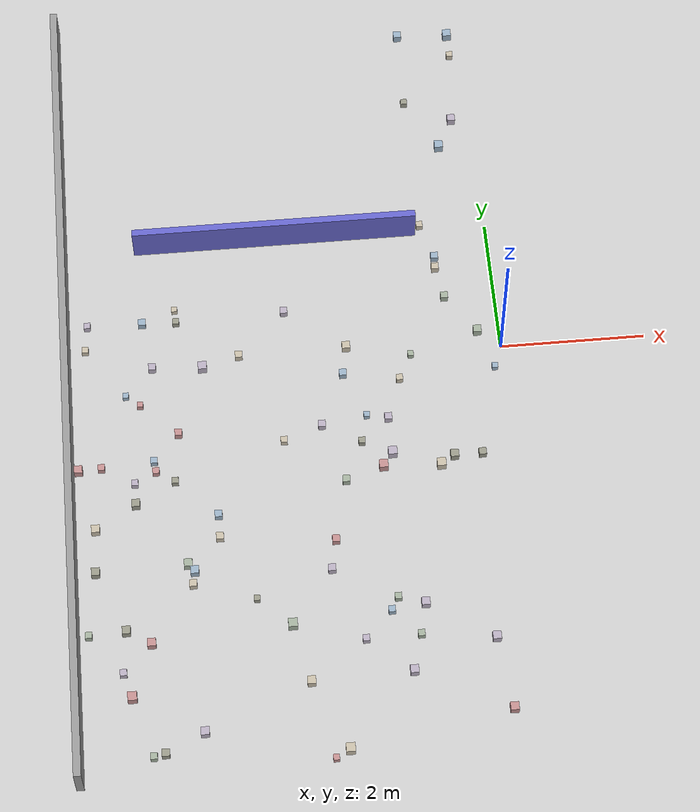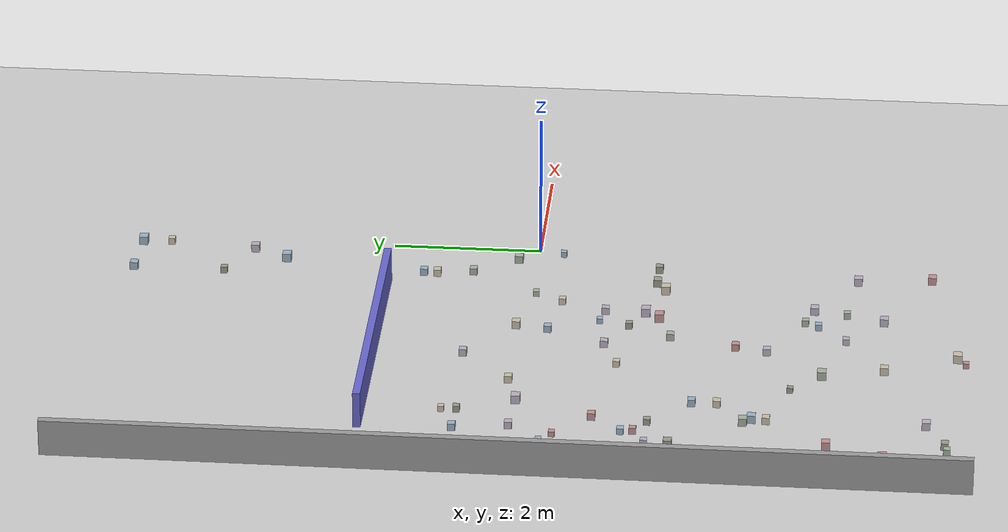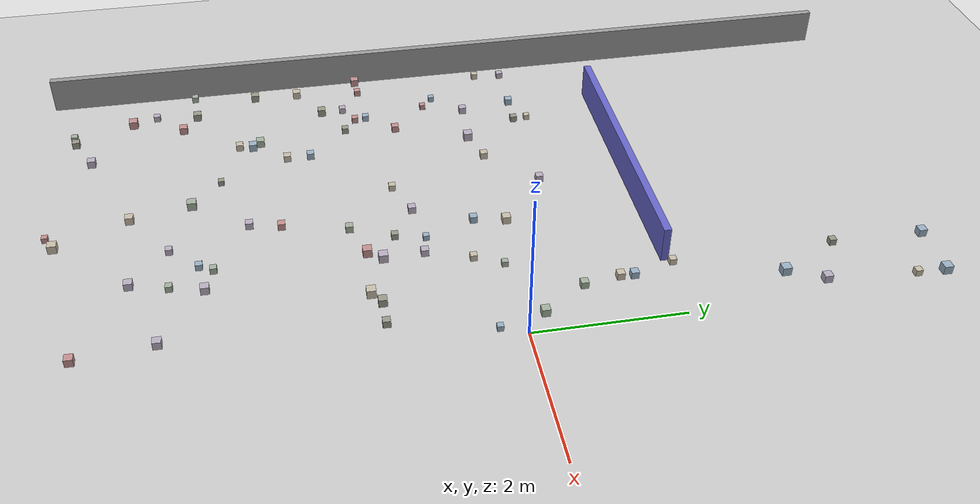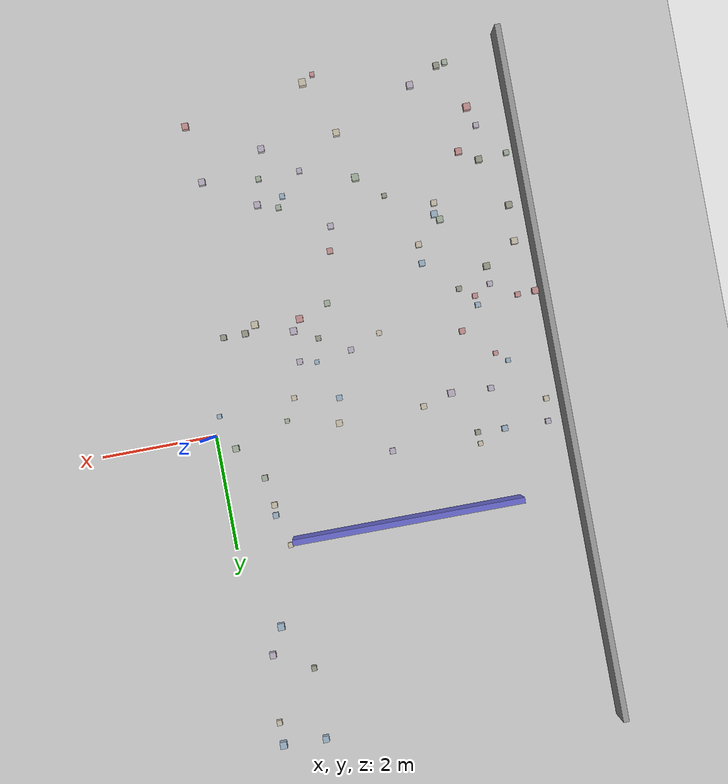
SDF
<sdf version="1.6">
 <world name="small_maze_world">
  <include><uri>model://ground_plane</uri></include>
  <include><uri>model://sun</uri></include>
  <model name="wall_west">
   <static>true</static>
   <pose>-6 0 0.25 0 0 0</pose>
   <link name="link">
    <collision name="collision"><geometry><box><size>0.1 12 0.5</size></box></geometry></collision>
    <visual name="visual">
     <geometry><box><size>0.1 12 0.5</size></box></geometry>
     <material><ambient>0.6 0.6 0.6 1</ambient></material>
    </visual>
   </link>
  </model>
  <model name="maze_wall_1">
   <static>true</static>
   <pose>-3 2 0.25 0 0 0</pose>
   <link name="link">
    <collision name="collision"><geometry><box><size>4 0.1 0.5</size></box></geometry></collision>
    <visual name="visual">
     <geometry><box><size>4 0.1 0.5</size></box></geometry>
     <material><ambient>0.4 0.4 0.8 1</ambient></material>
    </visual>
   </link>
  </model>
  <model name="box_1">
   <static>false</static>
   <pose>-3.18 -3.97 0.05 0 0 0</pose>
   <link name="link">
    <inertial>
     <mass>0.2</mass>
     <inertia><ixx>0.001</ixx><iyy>0.001</iyy><izz>0.001</izz><ixy>0</ixy><ixz>0</ixz><iyz>0</iyz></inertia>
    </inertial>
    <collision name="collision"><geometry><box><size>0.12 0.12 0.12</size></box></geometry></collision>
    <visual name="visual">
     <geometry><box><size>0.12 0.12 0.12</size></box></geometry>
     <material><ambient>0.64 0.69 0.62 1</ambient><diffuse>0.64 0.69 0.62 1</diffuse></material>
    </visual>
   </link>
  </model>
  <model name="box_2">
   <static>false</static>
   <pose>-0.93 2.08 0.05 0 0 0</pose>
   <link name="link">
    <inertial>
     <mass>0.2</mass>
     <inertia><ixx>0.001</ixx><iyy>0.001</iyy><izz>0.001</izz><ixy>0</ixy><ixz>0</ixz><iyz>0</iyz></inertia>
    </inertial>
    <collision name="collision"><geometry><box><size>0.09 0.09 0.09</size></box></geometry></collision>
    <visual name="visual">
     <geometry><box><size>0.09 0.09 0.09</size></box></geometry>
     <material><ambient>0.78 0.74 0.66 1</ambient><diffuse>0.78 0.74 0.66 1</diffuse></material>
    </visual>
   </link>
  </model>
  <model name="box_3">
   <static>false</static>
   <pose>-0.45 -5.37 0.05 0 0 0</pose>
   <link name="link">
    <inertial>
     <mass>0.2</mass>
     <inertia><ixx>0.001</ixx><iyy>0.001</iyy><izz>0.001</izz><ixy>0</ixy><ixz>0</ixz><iyz>0</iyz></inertia>
    </inertial>
    <collision name="collision"><geometry><box><size>0.11 0.11 0.11</size></box></geometry></collision>
    <visual name="visual">
     <geometry><box><size>0.11 0.11 0.11</size></box></geometry>
     <material><ambient>0.76 0.56 0.56 1</ambient><diffuse>0.76 0.56 0.56 1</diffuse></material>
    </visual>
   </link>
  </model>
  <model name="box_4">
   <static>false</static>
   <pose>-4.91 -5.62 0.05 0 0 0</pose>
   <link name="link">
    <inertial>
     <mass>0.2</mass>
     <inertia><ixx>0.001</ixx><iyy>0.001</iyy><izz>0.001</izz><ixy>0</ixy><ixz>0</ixz><iyz>0</iyz></inertia>
    </inertial>
    <collision name="collision"><geometry><box><size>0.1 0.1 0.1</size></box></geometry></collision>
    <visual name="visual">
     <geometry><box><size>0.1 0.1 0.1</size></box></geometry>
     <material><ambient>0.6 0.6 0.54 1</ambient><diffuse>0.6 0.6 0.54 1</diffuse></material>
    </visual>
   </link>
  </model>
  <model name="box_5">
   <static>false</static>
   <pose>-2.25 -4.26 0.05 0 0 0</pose>
   <link name="link">
    <inertial>
     <mass>0.2</mass>
     <inertia><ixx>0.001</ixx><iyy>0.001</iyy><izz>0.001</izz><ixy>0</ixy><ixz>0</ixz><iyz>0</iyz></inertia>
    </inertial>
    <collision name="collision"><geometry><box><size>0.09 0.09 0.09</size></box></geometry></collision>
    <visual name="visual">
     <geometry><box><size>0.09 0.09 0.09</size></box></geometry>
     <material><ambient>0.72 0.68 0.75 1</ambient><diffuse>0.72 0.68 0.75 1</diffuse></material>
    </visual>
   </link>
  </model>
  <model name="box_7">
   <static>false</static>
   <pose>-2.61 -3.22 0.05 0 0 0</pose>
   <link name="link">
    <inertial>
     <mass>0.2</mass>
     <inertia><ixx>0.001</ixx><iyy>0.001</iyy><izz>0.001</izz><ixy>0</ixy><ixz>0</ixz><iyz>0</iyz></inertia>
    </inertial>
    <collision name="collision"><geometry><box><size>0.1 0.1 0.1</size></box></geometry></collision>
    <visual name="visual">
     <geometry><box><size>0.1 0.1 0.1</size></box></geometry>
     <material><ambient>0.72 0.68 0.75 1</ambient><diffuse>0.72 0.68 0.75 1</diffuse></material>
    </visual>
   </link>
  </model>
  <model name="box_9">
   <static>false</static>
   <pose>-4.87 -1.42 0.05 0 0 0</pose>
   <link name="link">
    <inertial>
     <mass>0.2</mass>
     <inertia><ixx>0.001</ixx><iyy>0.001</iyy><izz>0.001</izz><ixy>0</ixy><ixz>0</ixz><iyz>0</iyz></inertia>
    </inertial>
    <collision name="collision"><geometry><box><size>0.09 0.09 0.09</size></box></geometry></collision>
    <visual name="visual">
     <geometry><box><size>0.09 0.09 0.09</size></box></geometry>
     <material><ambient>0.6 0.69 0.77 1</ambient><diffuse>0.6 0.69 0.77 1</diffuse></material>
    </visual>
   </link>
  </model>
  <model name="box_10">
   <static>false</static>
   <pose>-0.94 4.25 0.05 0 0 0</pose>
   <link name="link">
    <inertial>
     <mass>0.2</mass>
     <inertia><ixx>0.001</ixx><iyy>0.001</iyy><izz>0.001</izz><ixy>0</ixy><ixz>0</ixz><iyz>0</iyz></inertia>
    </inertial>
    <collision name="collision"><geometry><box><size>0.09 0.09 0.09</size></box></geometry></collision>
    <visual name="visual">
     <geometry><box><size>0.09 0.09 0.09</size></box></geometry>
     <material><ambient>0.6 0.6 0.54 1</ambient><diffuse>0.6 0.6 0.54 1</diffuse></material>
    </visual>
   </link>
  </model>
  <model name="box_15">
   <static>false</static>
   <pose>-0.77 1.53 0.05 0 0 0</pose>
   <link name="link">
    <inertial>
     <mass>0.2</mass>
     <inertia><ixx>0.001</ixx><iyy>0.001</iyy><izz>0.001</izz><ixy>0</ixy><ixz>0</ixz><iyz>0</iyz></inertia>
    </inertial>
    <collision name="collision"><geometry><box><size>0.1 0.1 0.1</size></box></geometry></collision>
    <visual name="visual">
     <geometry><box><size>0.1 0.1 0.1</size></box></geometry>
     <material><ambient>0.6 0.69 0.77 1</ambient><diffuse>0.6 0.69 0.77 1</diffuse></material>
    </visual>
   </link>
  </model>
  <model name="box_17">
   <static>false</static>
   <pose>-1.95 -0.95 0.05 0 0 0</pose>
   <link name="link">
    <inertial>
     <mass>0.2</mass>
     <inertia><ixx>0.001</ixx><iyy>0.001</iyy><izz>0.001</izz><ixy>0</ixy><ixz>0</ixz><iyz>0</iyz></inertia>
    </inertial>
    <collision name="collision"><geometry><box><size>0.08 0.08 0.08</size></box></geometry></collision>
    <visual name="visual">
     <geometry><box><size>0.08 0.08 0.08</size></box></geometry>
     <material><ambient>0.6 0.69 0.77 1</ambient><diffuse>0.6 0.69 0.77 1</diffuse></material>
    </visual>
   </link>
  </model>
  <model name="box_18">
   <static>false</static>
   <pose>-5.14 -2.05 0.05 0 0 0</pose>
   <link name="link">
    <inertial>
     <mass>0.2</mass>
     <inertia><ixx>0.001</ixx><iyy>0.001</iyy><izz>0.001</izz><ixy>0</ixy><ixz>0</ixz><iyz>0</iyz></inertia>
    </inertial>
    <collision name="collision"><geometry><box><size>0.11 0.11 0.11</size></box></geometry></collision>
    <visual name="visual">
     <geometry><box><size>0.11 0.11 0.11</size></box></geometry>
     <material><ambient>0.6 0.6 0.54 1</ambient><diffuse>0.6 0.6 0.54 1</diffuse></material>
    </visual>
   </link>
  </model>
  <model name="box_19">
   <static>false</static>
   <pose>-2.14 0.16 0.05 0 0 0</pose>
   <link name="link">
    <inertial>
     <mass>0.2</mass>
     <inertia><ixx>0.001</ixx><iyy>0.001</iyy><izz>0.001</izz><ixy>0</ixy><ixz>0</ixz><iyz>0</iyz></inertia>
    </inertial>
    <collision name="collision"><geometry><box><size>0.11 0.11 0.11</size></box></geometry></collision>
    <visual name="visual">
     <geometry><box><size>0.11 0.11 0.11</size></box></geometry>
     <material><ambient>0.78 0.74 0.66 1</ambient><diffuse>0.78 0.74 0.66 1</diffuse></material>
    </visual>
   </link>
  </model>
  <model name="box_22">
   <static>false</static>
   <pose>-3.63 0.14 0.05 0 0 0</pose>
   <link name="link">
    <inertial>
     <mass>0.2</mass>
     <inertia><ixx>0.001</ixx><iyy>0.001</iyy><izz>0.001</izz><ixy>0</ixy><ixz>0</ixz><iyz>0</iyz></inertia>
    </inertial>
    <collision name="collision"><geometry><box><size>0.1 0.1 0.1</size></box></geometry></collision>
    <visual name="visual">
     <geometry><box><size>0.1 0.1 0.1</size></box></geometry>
     <material><ambient>0.78 0.74 0.66 1</ambient><diffuse>0.78 0.74 0.66 1</diffuse></material>
    </visual>
   </link>
  </model>
  <model name="box_25">
   <static>false</static>
   <pose>-5.83 -3.92 0.05 0 0 0</pose>
   <link name="link">
    <inertial>
     <mass>0.2</mass>
     <inertia><ixx>0.001</ixx><iyy>0.001</iyy><izz>0.001</izz><ixy>0</ixy><ixz>0</ixz><iyz>0</iyz></inertia>
    </inertial>
    <collision name="collision"><geometry><box><size>0.09 0.09 0.09</size></box></geometry></collision>
    <visual name="visual">
     <geometry><box><size>0.09 0.09 0.09</size></box></geometry>
     <material><ambient>0.64 0.69 0.62 1</ambient><diffuse>0.64 0.69 0.62 1</diffuse></material>
    </visual>
   </link>
  </model>
  <model name="box_30">
   <static>false</static>
   <pose>-2.57 -1.05 0.05 0 0 0</pose>
   <link name="link">
    <inertial>
     <mass>0.2</mass>
     <inertia><ixx>0.001</ixx><iyy>0.001</iyy><izz>0.001</izz><ixy>0</ixy><ixz>0</ixz><iyz>0</iyz></inertia>
    </inertial>
    <collision name="collision"><geometry><box><size>0.1 0.1 0.1</size></box></geometry></collision>
    <visual name="visual">
     <geometry><box><size>0.1 0.1 0.1</size></box></geometry>
     <material><ambient>0.72 0.68 0.75 1</ambient><diffuse>0.72 0.68 0.75 1</diffuse></material>
    </visual>
   </link>
  </model>
  <model name="box_32">
   <static>false</static>
   <pose>-3.1 -1.25 0.05 0 0 0</pose>
   <link name="link">
    <inertial>
     <mass>0.2</mass>
     <inertia><ixx>0.001</ixx><iyy>0.001</iyy><izz>0.001</izz><ixy>0</ixy><ixz>0</ixz><iyz>0</iyz></inertia>
    </inertial>
    <collision name="collision"><geometry><box><size>0.09 0.09 0.09</size></box></geometry></collision>
    <visual name="visual">
     <geometry><box><size>0.09 0.09 0.09</size></box></geometry>
     <material><ambient>0.78 0.74 0.66 1</ambient><diffuse>0.78 0.74 0.66 1</diffuse></material>
    </visual>
   </link>
  </model>
  <model name="box_36">
   <static>false</static>
   <pose>-2.77 -5.86 0.05 0 0 0</pose>
   <link name="link">
    <inertial>
     <mass>0.2</mass>
     <inertia><ixx>0.001</ixx><iyy>0.001</iyy><izz>0.001</izz><ixy>0</ixy><ixz>0</ixz><iyz>0</iyz></inertia>
    </inertial>
    <collision name="collision"><geometry><box><size>0.08 0.08 0.08</size></box></geometry></collision>
    <visual name="visual">
     <geometry><box><size>0.08 0.08 0.08</size></box></geometry>
     <material><ambient>0.76 0.56 0.56 1</ambient><diffuse>0.76 0.56 0.56 1</diffuse></material>
    </visual>
   </link>
  </model>
  <model name="box_37">
   <static>false</static>
   <pose>-4.05 -2.3 0.05 0 0 0</pose>
   <link name="link">
    <inertial>
     <mass>0.2</mass>
     <inertia><ixx>0.001</ixx><iyy>0.001</iyy><izz>0.001</izz><ixy>0</ixy><ixz>0</ixz><iyz>0</iyz></inertia>
    </inertial>
    <collision name="collision"><geometry><box><size>0.1 0.1 0.1</size></box></geometry></collision>
    <visual name="visual">
     <geometry><box><size>0.1 0.1 0.1</size></box></geometry>
     <material><ambient>0.6 0.69 0.77 1</ambient><diffuse>0.6 0.69 0.77 1</diffuse></material>
    </visual>
   </link>
  </model>
  <model name="box_41">
   <static>false</static>
   <pose>-1.78 -3.7 0.05 0 0 0</pose>
   <link name="link">
    <inertial>
     <mass>0.2</mass>
     <inertia><ixx>0.001</ixx><iyy>0.001</iyy><izz>0.001</izz><ixy>0</ixy><ixz>0</ixz><iyz>0</iyz></inertia>
    </inertial>
    <collision name="collision"><geometry><box><size>0.09 0.09 0.09</size></box></geometry></collision>
    <visual name="visual">
     <geometry><box><size>0.09 0.09 0.09</size></box></geometry>
     <material><ambient>0.64 0.69 0.62 1</ambient><diffuse>0.64 0.69 0.62 1</diffuse></material>
    </visual>
   </link>
  </model>
  <model name="box_42">
   <static>false</static>
   <pose>-4.94 0.77 0.05 0 0 0</pose>
   <link name="link">
    <inertial>
     <mass>0.2</mass>
     <inertia><ixx>0.001</ixx><iyy>0.001</iyy><izz>0.001</izz><ixy>0</ixy><ixz>0</ixz><iyz>0</iyz></inertia>
    </inertial>
    <collision name="collision"><geometry><box><size>0.1 0.1 0.1</size></box></geometry></collision>
    <visual name="visual">
     <geometry><box><size>0.1 0.1 0.1</size></box></geometry>
     <material><ambient>0.6 0.69 0.77 1</ambient><diffuse>0.6 0.69 0.77 1</diffuse></material>
    </visual>
   </link>
  </model>
  <model name="box_43">
   <static>false</static>
   <pose>-0.3 0.27 0.05 0 0 0</pose>
   <link name="link">
    <inertial>
     <mass>0.2</mass>
     <inertia><ixx>0.001</ixx><iyy>0.001</iyy><izz>0.001</izz><ixy>0</ixy><ixz>0</ixz><iyz>0</iyz></inertia>
    </inertial>
    <collision name="collision"><geometry><box><size>0.11 0.11 0.11</size></box></geometry></collision>
    <visual name="visual">
     <geometry><box><size>0.11 0.11 0.11</size></box></geometry>
     <material><ambient>0.64 0.69 0.62 1</ambient><diffuse>0.64 0.69 0.62 1</diffuse></material>
    </visual>
   </link>
  </model>
  <model name="box_46">
   <static>false</static>
   <pose>-0.12 -0.33 0.05 0 0 0</pose>
   <link name="link">
    <inertial>
     <mass>0.2</mass>
     <inertia><ixx>0.001</ixx><iyy>0.001</iyy><izz>0.001</izz><ixy>0</ixy><ixz>0</ixz><iyz>0</iyz></inertia>
    </inertial>
    <collision name="collision"><geometry><box><size>0.08 0.08 0.08</size></box></geometry></collision>
    <visual name="visual">
     <geometry><box><size>0.08 0.08 0.08</size></box></geometry>
     <material><ambient>0.6 0.69 0.77 1</ambient><diffuse>0.6 0.69 0.77 1</diffuse></material>
    </visual>
   </link>
  </model>
  <model name="box_47">
   <static>false</static>
   <pose>-2.96 0.8 0.05 0 0 0</pose>
   <link name="link">
    <inertial>
     <mass>0.2</mass>
     <inertia><ixx>0.001</ixx><iyy>0.001</iyy><izz>0.001</izz><ixy>0</ixy><ixz>0</ixz><iyz>0</iyz></inertia>
    </inertial>
    <collision name="collision"><geometry><box><size>0.1 0.1 0.1</size></box></geometry></collision>
    <visual name="visual">
     <geometry><box><size>0.1 0.1 0.1</size></box></geometry>
     <material><ambient>0.72 0.68 0.75 1</ambient><diffuse>0.72 0.68 0.75 1</diffuse></material>
    </visual>
   </link>
  </model>
  <model name="box_48">
   <static>false</static>
   <pose>-4.6 -1.75 0.05 0 0 0</pose>
   <link name="link">
    <inertial>
     <mass>0.2</mass>
     <inertia><ixx>0.001</ixx><iyy>0.001</iyy><izz>0.001</izz><ixy>0</ixy><ixz>0</ixz><iyz>0</iyz></inertia>
    </inertial>
    <collision name="collision"><geometry><box><size>0.09 0.09 0.09</size></box></geometry></collision>
    <visual name="visual">
     <geometry><box><size>0.09 0.09 0.09</size></box></geometry>
     <material><ambient>0.6 0.6 0.54 1</ambient><diffuse>0.6 0.6 0.54 1</diffuse></material>
    </visual>
   </link>
  </model>
  <model name="box_50">
   <static>false</static>
   <pose>-1.43 -3.81 0.05 0 0 0</pose>
   <link name="link">
    <inertial>
     <mass>0.2</mass>
     <inertia><ixx>0.001</ixx><iyy>0.001</iyy><izz>0.001</izz><ixy>0</ixy><ixz>0</ixz><iyz>0</iyz></inertia>
    </inertial>
    <collision name="collision"><geometry><box><size>0.11 0.11 0.11</size></box></geometry></collision>
    <visual name="visual">
     <geometry><box><size>0.11 0.11 0.11</size></box></geometry>
     <material><ambient>0.72 0.68 0.75 1</ambient><diffuse>0.72 0.68 0.75 1</diffuse></material>
    </visual>
   </link>
  </model>
  <model name="box_52">
   <static>false</static>
   <pose>-4.85 -1.58 0.05 0 0 0</pose>
   <link name="link">
    <inertial>
     <mass>0.2</mass>
     <inertia><ixx>0.001</ixx><iyy>0.001</iyy><izz>0.001</izz><ixy>0</ixy><ixz>0</ixz><iyz>0</iyz></inertia>
    </inertial>
    <collision name="collision"><geometry><box><size>0.09 0.09 0.09</size></box></geometry></collision>
    <visual name="visual">
     <geometry><box><size>0.09 0.09 0.09</size></box></geometry>
     <material><ambient>0.76 0.56 0.56 1</ambient><diffuse>0.76 0.56 0.56 1</diffuse></material>
    </visual>
   </link>
  </model>
  <model name="box_56">
   <static>false</static>
   <pose>-5.3 -4.82 0.05 0 0 0</pose>
   <link name="link">
    <inertial>
     <mass>0.2</mass>
     <inertia><ixx>0.001</ixx><iyy>0.001</iyy><izz>0.001</izz><ixy>0</ixy><ixz>0</ixz><iyz>0</iyz></inertia>
    </inertial>
    <collision name="collision"><geometry><box><size>0.12 0.12 0.12</size></box></geometry></collision>
    <visual name="visual">
     <geometry><box><size>0.12 0.12 0.12</size></box></geometry>
     <material><ambient>0.76 0.56 0.56 1</ambient><diffuse>0.76 0.56 0.56 1</diffuse></material>
    </visual>
   </link>
  </model>
  <model name="box_57">
   <static>false</static>
   <pose>-1.88 -3.88 0.05 0 0 0</pose>
   <link name="link">
    <inertial>
     <mass>0.2</mass>
     <inertia><ixx>0.001</ixx><iyy>0.001</iyy><izz>0.001</izz><ixy>0</ixy><ixz>0</ixz><iyz>0</iyz></inertia>
    </inertial>
    <collision name="collision"><geometry><box><size>0.09 0.09 0.09</size></box></geometry></collision>
    <visual name="visual">
     <geometry><box><size>0.09 0.09 0.09</size></box></geometry>
     <material><ambient>0.6 0.69 0.77 1</ambient><diffuse>0.6 0.69 0.77 1</diffuse></material>
    </visual>
   </link>
  </model>
  <model name="box_58">
   <static>false</static>
   <pose>-0.51 3.44 0.05 0 0 0</pose>
   <link name="link">
    <inertial>
     <mass>0.2</mass>
     <inertia><ixx>0.001</ixx><iyy>0.001</iyy><izz>0.001</izz><ixy>0</ixy><ixz>0</ixz><iyz>0</iyz></inertia>
    </inertial>
    <collision name="collision"><geometry><box><size>0.12 0.12 0.12</size></box></geometry></collision>
    <visual name="visual">
     <geometry><box><size>0.12 0.12 0.12</size></box></geometry>
     <material><ambient>0.6 0.69 0.77 1</ambient><diffuse>0.6 0.69 0.77 1</diffuse></material>
    </visual>
   </link>
  </model>
  <model name="box_61">
   <static>false</static>
   <pose>-3.62 -3.57 0.05 0 0 0</pose>
   <link name="link">
    <inertial>
     <mass>0.2</mass>
     <inertia><ixx>0.001</ixx><iyy>0.001</iyy><izz>0.001</izz><ixy>0</ixy><ixz>0</ixz><iyz>0</iyz></inertia>
    </inertial>
    <collision name="collision"><geometry><box><size>0.08 0.08 0.08</size></box></geometry></collision>
    <visual name="visual">
     <geometry><box><size>0.08 0.08 0.08</size></box></geometry>
     <material><ambient>0.6 0.6 0.54 1</ambient><diffuse>0.6 0.6 0.54 1</diffuse></material>
    </visual>
   </link>
  </model>
  <model name="box_65">
   <static>false</static>
   <pose>-5.02 -0.54 0.05 0 0 0</pose>
   <link name="link">
    <inertial>
     <mass>0.2</mass>
     <inertia><ixx>0.001</ixx><iyy>0.001</iyy><izz>0.001</izz><ixy>0</ixy><ixz>0</ixz><iyz>0</iyz></inertia>
    </inertial>
    <collision name="collision"><geometry><box><size>0.08 0.08 0.08</size></box></geometry></collision>
    <visual name="visual">
     <geometry><box><size>0.08 0.08 0.08</size></box></geometry>
     <material><ambient>0.76 0.56 0.56 1</ambient><diffuse>0.76 0.56 0.56 1</diffuse></material>
    </visual>
   </link>
  </model>
  <model name="box_66">
   <static>false</static>
   <pose>-4.49 -2.99 0.05 0 0 0</pose>
   <link name="link">
    <inertial>
     <mass>0.2</mass>
     <inertia><ixx>0.001</ixx><iyy>0.001</iyy><izz>0.001</izz><ixy>0</ixy><ixz>0</ixz><iyz>0</iyz></inertia>
    </inertial>
    <collision name="collision"><geometry><box><size>0.11 0.11 0.11</size></box></geometry></collision>
    <visual name="visual">
     <geometry><box><size>0.11 0.11 0.11</size></box></geometry>
     <material><ambient>0.64 0.69 0.62 1</ambient><diffuse>0.64 0.69 0.62 1</diffuse></material>
    </visual>
   </link>
  </model>
  <model name="box_67">
   <static>false</static>
   <pose>-0.56 -4.37 0.05 0 0 0</pose>
   <link name="link">
    <inertial>
     <mass>0.2</mass>
     <inertia><ixx>0.001</ixx><iyy>0.001</iyy><izz>0.001</izz><ixy>0</ixy><ixz>0</ixz><iyz>0</iyz></inertia>
    </inertial>
    <collision name="collision"><geometry><box><size>0.11 0.11 0.11</size></box></geometry></collision>
    <visual name="visual">
     <geometry><box><size>0.11 0.11 0.11</size></box></geometry>
     <material><ambient>0.72 0.68 0.75 1</ambient><diffuse>0.72 0.68 0.75 1</diffuse></material>
    </visual>
   </link>
  </model>
  <model name="box_69">
   <static>false</static>
   <pose>-4.83 0.04 0.05 0 0 0</pose>
   <link name="link">
    <inertial>
     <mass>0.2</mass>
     <inertia><ixx>0.001</ixx><iyy>0.001</iyy><izz>0.001</izz><ixy>0</ixy><ixz>0</ixz><iyz>0</iyz></inertia>
    </inertial>
    <collision name="collision"><geometry><box><size>0.1 0.1 0.1</size></box></geometry></collision>
    <visual name="visual">
     <geometry><box><size>0.1 0.1 0.1</size></box></geometry>
     <material><ambient>0.72 0.68 0.75 1</ambient><diffuse>0.72 0.68 0.75 1</diffuse></material>
    </visual>
   </link>
  </model>
  <model name="box_71">
   <static>false</static>
   <pose>-1.67 -4.75 0.05 0 0 0</pose>
   <link name="link">
    <inertial>
     <mass>0.2</mass>
     <inertia><ixx>0.001</ixx><iyy>0.001</iyy><izz>0.001</izz><ixy>0</ixy><ixz>0</ixz><iyz>0</iyz></inertia>
    </inertial>
    <collision name="collision"><geometry><box><size>0.11 0.11 0.11</size></box></geometry></collision>
    <visual name="visual">
     <geometry><box><size>0.11 0.11 0.11</size></box></geometry>
     <material><ambient>0.72 0.68 0.75 1</ambient><diffuse>0.72 0.68 0.75 1</diffuse></material>
    </visual>
   </link>
  </model>
  <model name="box_74">
   <static>false</static>
   <pose>-5.71 -3.02 0.05 0 0 0</pose>
   <link name="link">
    <inertial>
     <mass>0.2</mass>
     <inertia><ixx>0.001</ixx><iyy>0.001</iyy><izz>0.001</izz><ixy>0</ixy><ixz>0</ixz><iyz>0</iyz></inertia>
    </inertial>
    <collision name="collision"><geometry><box><size>0.11 0.11 0.11</size></box></geometry></collision>
    <visual name="visual">
     <geometry><box><size>0.11 0.11 0.11</size></box></geometry>
     <material><ambient>0.6 0.6 0.54 1</ambient><diffuse>0.6 0.6 0.54 1</diffuse></material>
    </visual>
   </link>
  </model>
  <model name="box_79">
   <static>false</static>
   <pose>-2.05 -1.35 0.05 0 0 0</pose>
   <link name="link">
    <inertial>
     <mass>0.2</mass>
     <inertia><ixx>0.001</ixx><iyy>0.001</iyy><izz>0.001</izz><ixy>0</ixy><ixz>0</ixz><iyz>0</iyz></inertia>
    </inertial>
    <collision name="collision"><geometry><box><size>0.09 0.09 0.09</size></box></geometry></collision>
    <visual name="visual">
     <geometry><box><size>0.09 0.09 0.09</size></box></geometry>
     <material><ambient>0.6 0.6 0.54 1</ambient><diffuse>0.6 0.6 0.54 1</diffuse></material>
    </visual>
   </link>
  </model>
  <model name="box_80">
   <static>false</static>
   <pose>-5.58 -1.47 0.05 0 0 0</pose>
   <link name="link">
    <inertial>
     <mass>0.2</mass>
     <inertia><ixx>0.001</ixx><iyy>0.001</iyy><izz>0.001</izz><ixy>0</ixy><ixz>0</ixz><iyz>0</iyz></inertia>
    </inertial>
    <collision name="collision"><geometry><box><size>0.09 0.09 0.09</size></box></geometry></collision>
    <visual name="visual">
     <geometry><box><size>0.09 0.09 0.09</size></box></geometry>
     <material><ambient>0.76 0.56 0.56 1</ambient><diffuse>0.76 0.56 0.56 1</diffuse></material>
    </visual>
   </link>
  </model>
  <model name="box_81">
   <static>false</static>
   <pose>-4.14 0.0 0.05 0 0 0</pose>
   <link name="link">
    <inertial>
     <mass>0.2</mass>
     <inertia><ixx>0.001</ixx><iyy>0.001</iyy><izz>0.001</izz><ixy>0</ixy><ixz>0</ixz><iyz>0</iyz></inertia>
    </inertial>
    <collision name="collision"><geometry><box><size>0.12 0.12 0.12</size></box></geometry></collision>
    <visual name="visual">
     <geometry><box><size>0.12 0.12 0.12</size></box></geometry>
     <material><ambient>0.72 0.68 0.75 1</ambient><diffuse>0.72 0.68 0.75 1</diffuse></material>
    </visual>
   </link>
  </model>
  <model name="box_82">
   <static>false</static>
   <pose>-0.7 0.86 0.05 0 0 0</pose>
   <link name="link">
    <inertial>
     <mass>0.2</mass>
     <inertia><ixx>0.001</ixx><iyy>0.001</iyy><izz>0.001</izz><ixy>0</ixy><ixz>0</ixz><iyz>0</iyz></inertia>
    </inertial>
    <collision name="collision"><geometry><box><size>0.1 0.1 0.1</size></box></geometry></collision>
    <visual name="visual">
     <geometry><box><size>0.1 0.1 0.1</size></box></geometry>
     <material><ambient>0.64 0.69 0.62 1</ambient><diffuse>0.64 0.69 0.62 1</diffuse></material>
    </visual>
   </link>
  </model>
  <model name="box_83">
   <static>false</static>
   <pose>-5.21 -0.38 0.05 0 0 0</pose>
   <link name="link">
    <inertial>
     <mass>0.2</mass>
     <inertia><ixx>0.001</ixx><iyy>0.001</iyy><izz>0.001</izz><ixy>0</ixy><ixz>0</ixz><iyz>0</iyz></inertia>
    </inertial>
    <collision name="collision"><geometry><box><size>0.08 0.08 0.08</size></box></geometry></collision>
    <visual name="visual">
     <geometry><box><size>0.08 0.08 0.08</size></box></geometry>
     <material><ambient>0.6 0.69 0.77 1</ambient><diffuse>0.6 0.69 0.77 1</diffuse></material>
    </visual>
   </link>
  </model>
  <model name="box_84">
   <static>false</static>
   <pose>-5.02 -4.09 0.05 0 0 0</pose>
   <link name="link">
    <inertial>
     <mass>0.2</mass>
     <inertia><ixx>0.001</ixx><iyy>0.001</iyy><izz>0.001</izz><ixy>0</ixy><ixz>0</ixz><iyz>0</iyz></inertia>
    </inertial>
    <collision name="collision"><geometry><box><size>0.11 0.11 0.11</size></box></geometry></collision>
    <visual name="visual">
     <geometry><box><size>0.11 0.11 0.11</size></box></geometry>
     <material><ambient>0.76 0.56 0.56 1</ambient><diffuse>0.76 0.56 0.56 1</diffuse></material>
    </visual>
   </link>
  </model>
  <model name="box_85">
   <static>false</static>
   <pose>-5.69 -2.39 0.05 0 0 0</pose>
   <link name="link">
    <inertial>
     <mass>0.2</mass>
     <inertia><ixx>0.001</ixx><iyy>0.001</iyy><izz>0.001</izz><ixy>0</ixy><ixz>0</ixz><iyz>0</iyz></inertia>
    </inertial>
    <collision name="collision"><geometry><box><size>0.11 0.11 0.11</size></box></geometry></collision>
    <visual name="visual">
     <geometry><box><size>0.11 0.11 0.11</size></box></geometry>
     <material><ambient>0.78 0.74 0.66 1</ambient><diffuse>0.78 0.74 0.66 1</diffuse></material>
    </visual>
   </link>
  </model>
  <model name="box_88">
   <static>false</static>
   <pose>-2.22 -0.27 0.05 0 0 0</pose>
   <link name="link">
    <inertial>
     <mass>0.2</mass>
     <inertia><ixx>0.001</ixx><iyy>0.001</iyy><izz>0.001</izz><ixy>0</ixy><ixz>0</ixz><iyz>0</iyz></inertia>
    </inertial>
    <collision name="collision"><geometry><box><size>0.1 0.1 0.1</size></box></geometry></collision>
    <visual name="visual">
     <geometry><box><size>0.1 0.1 0.1</size></box></geometry>
     <material><ambient>0.6 0.69 0.77 1</ambient><diffuse>0.6 0.69 0.77 1</diffuse></material>
    </visual>
   </link>
  </model>
  <model name="box_89">
   <static>false</static>
   <pose>-1.53 -4.25 0.05 0 0 0</pose>
   <link name="link">
    <inertial>
     <mass>0.2</mass>
     <inertia><ixx>0.001</ixx><iyy>0.001</iyy><izz>0.001</izz><ixy>0</ixy><ixz>0</ixz><iyz>0</iyz></inertia>
    </inertial>
    <collision name="collision"><geometry><box><size>0.09 0.09 0.09</size></box></geometry></collision>
    <visual name="visual">
     <geometry><box><size>0.09 0.09 0.09</size></box></geometry>
     <material><ambient>0.64 0.69 0.62 1</ambient><diffuse>0.64 0.69 0.62 1</diffuse></material>
    </visual>
   </link>
  </model>
  <model name="box_90">
   <static>false</static>
   <pose>-5.06 -5.65 0.05 0 0 0</pose>
   <link name="link">
    <inertial>
     <mass>0.2</mass>
     <inertia><ixx>0.001</ixx><iyy>0.001</iyy><izz>0.001</izz><ixy>0</ixy><ixz>0</ixz><iyz>0</iyz></inertia>
    </inertial>
    <collision name="collision"><geometry><box><size>0.09 0.09 0.09</size></box></geometry></collision>
    <visual name="visual">
     <geometry><box><size>0.09 0.09 0.09</size></box></geometry>
     <material><ambient>0.64 0.69 0.62 1</ambient><diffuse>0.64 0.69 0.62 1</diffuse></material>
    </visual>
   </link>
  </model>
  <model name="box_94">
   <static>false</static>
   <pose>-2.58 -5.75 0.05 0 0 0</pose>
   <link name="link">
    <inertial>
     <mass>0.2</mass>
     <inertia><ixx>0.001</ixx><iyy>0.001</iyy><izz>0.001</izz><ixy>0</ixy><ixz>0</ixz><iyz>0</iyz></inertia>
    </inertial>
    <collision name="collision"><geometry><box><size>0.12 0.12 0.12</size></box></geometry></collision>
    <visual name="visual">
     <geometry><box><size>0.12 0.12 0.12</size></box></geometry>
     <material><ambient>0.78 0.74 0.66 1</ambient><diffuse>0.78 0.74 0.66 1</diffuse></material>
    </visual>
   </link>
  </model>
  <model name="box_95">
   <static>false</static>
   <pose>-1.26 -0.04 0.05 0 0 0</pose>
   <link name="link">
    <inertial>
     <mass>0.2</mass>
     <inertia><ixx>0.001</ixx><iyy>0.001</iyy><izz>0.001</izz><ixy>0</ixy><ixz>0</ixz><iyz>0</iyz></inertia>
    </inertial>
    <collision name="collision"><geometry><box><size>0.08 0.08 0.08</size></box></geometry></collision>
    <visual name="visual">
     <geometry><box><size>0.08 0.08 0.08</size></box></geometry>
     <material><ambient>0.64 0.69 0.62 1</ambient><diffuse>0.64 0.69 0.62 1</diffuse></material>
    </visual>
   </link>
  </model>
  <model name="box_96">
   <static>false</static>
   <pose>-5.89 -1.48 0.05 0 0 0</pose>
   <link name="link">
    <inertial>
     <mass>0.2</mass>
     <inertia><ixx>0.001</ixx><iyy>0.001</iyy><izz>0.001</izz><ixy>0</ixy><ixz>0</ixz><iyz>0</iyz></inertia>
    </inertial>
    <collision name="collision"><geometry><box><size>0.11 0.11 0.11</size></box></geometry></collision>
    <visual name="visual">
     <geometry><box><size>0.11 0.11 0.11</size></box></geometry>
     <material><ambient>0.76 0.56 0.56 1</ambient><diffuse>0.76 0.56 0.56 1</diffuse></material>
    </visual>
   </link>
  </model>
  <model name="box_97">
   <static>false</static>
   <pose>-2.52 -2.8 0.05 0 0 0</pose>
   <link name="link">
    <inertial>
     <mass>0.2</mass>
     <inertia><ixx>0.001</ixx><iyy>0.001</iyy><izz>0.001</izz><ixy>0</ixy><ixz>0</ixz><iyz>0</iyz></inertia>
    </inertial>
    <collision name="collision"><geometry><box><size>0.1 0.1 0.1</size></box></geometry></collision>
    <visual name="visual">
     <geometry><box><size>0.1 0.1 0.1</size></box></geometry>
     <material><ambient>0.76 0.56 0.56 1</ambient><diffuse>0.76 0.56 0.56 1</diffuse></material>
    </visual>
   </link>
  </model>
  <model name="box_98">
   <static>false</static>
   <pose>-1.65 -1.55 0.05 0 0 0</pose>
   <link name="link">
    <inertial>
     <mass>0.2</mass>
     <inertia><ixx>0.001</ixx><iyy>0.001</iyy><izz>0.001</izz><ixy>0</ixy><ixz>0</ixz><iyz>0</iyz></inertia>
    </inertial>
    <collision name="collision"><geometry><box><size>0.12 0.12 0.12</size></box></geometry></collision>
    <visual name="visual">
     <geometry><box><size>0.12 0.12 0.12</size></box></geometry>
     <material><ambient>0.72 0.68 0.75 1</ambient><diffuse>0.72 0.68 0.75 1</diffuse></material>
    </visual>
   </link>
  </model>
  <model name="box_101">
   <static>false</static>
   <pose>-4.52 -1.02 0.05 0 0 0</pose>
   <link name="link">
    <inertial>
     <mass>0.2</mass>
     <inertia><ixx>0.001</ixx><iyy>0.001</iyy><izz>0.001</izz><ixy>0</ixy><ixz>0</ixz><iyz>0</iyz></inertia>
    </inertial>
    <collision name="collision"><geometry><box><size>0.1 0.1 0.1</size></box></geometry></collision>
    <visual name="visual">
     <geometry><box><size>0.1 0.1 0.1</size></box></geometry>
     <material><ambient>0.76 0.56 0.56 1</ambient><diffuse>0.76 0.56 0.56 1</diffuse></material>
    </visual>
   </link>
  </model>
  <model name="box_102">
   <static>false</static>
   <pose>-4.41 -3.1 0.05 0 0 0</pose>
   <link name="link">
    <inertial>
     <mass>0.2</mass>
     <inertia><ixx>0.001</ixx><iyy>0.001</iyy><izz>0.001</izz><ixy>0</ixy><ixz>0</ixz><iyz>0</iyz></inertia>
    </inertial>
    <collision name="collision"><geometry><box><size>0.11 0.11 0.11</size></box></geometry></collision>
    <visual name="visual">
     <geometry><box><size>0.11 0.11 0.11</size></box></geometry>
     <material><ambient>0.6 0.69 0.77 1</ambient><diffuse>0.6 0.69 0.77 1</diffuse></material>
    </visual>
   </link>
  </model>
  <model name="box_103">
   <static>false</static>
   <pose>-0.28 3.9 0.05 0 0 0</pose>
   <link name="link">
    <inertial>
     <mass>0.2</mass>
     <inertia><ixx>0.001</ixx><iyy>0.001</iyy><izz>0.001</izz><ixy>0</ixy><ixz>0</ixz><iyz>0</iyz></inertia>
    </inertial>
    <collision name="collision"><geometry><box><size>0.11 0.11 0.11</size></box></geometry></collision>
    <visual name="visual">
     <geometry><box><size>0.11 0.11 0.11</size></box></geometry>
     <material><ambient>0.72 0.68 0.75 1</ambient><diffuse>0.72 0.68 0.75 1</diffuse></material>
    </visual>
   </link>
  </model>
  <model name="box_104">
   <static>false</static>
   <pose>-0.82 -1.66 0.05 0 0 0</pose>
   <link name="link">
    <inertial>
     <mass>0.2</mass>
     <inertia><ixx>0.001</ixx><iyy>0.001</iyy><izz>0.001</izz><ixy>0</ixy><ixz>0</ixz><iyz>0</iyz></inertia>
    </inertial>
    <collision name="collision"><geometry><box><size>0.11 0.11 0.11</size></box></geometry></collision>
    <visual name="visual">
     <geometry><box><size>0.11 0.11 0.11</size></box></geometry>
     <material><ambient>0.6 0.6 0.54 1</ambient><diffuse>0.6 0.6 0.54 1</diffuse></material>
    </visual>
   </link>
  </model>
  <model name="box_105">
   <static>false</static>
   <pose>-4.05 -2.63 0.05 0 0 0</pose>
   <link name="link">
    <inertial>
     <mass>0.2</mass>
     <inertia><ixx>0.001</ixx><iyy>0.001</iyy><izz>0.001</izz><ixy>0</ixy><ixz>0</ixz><iyz>0</iyz></inertia>
    </inertial>
    <collision name="collision"><geometry><box><size>0.1 0.1 0.1</size></box></geometry></collision>
    <visual name="visual">
     <geometry><box><size>0.1 0.1 0.1</size></box></geometry>
     <material><ambient>0.78 0.74 0.66 1</ambient><diffuse>0.78 0.74 0.66 1</diffuse></material>
    </visual>
   </link>
  </model>
  <model name="box_106">
   <static>false</static>
   <pose>-0.78 1.35 0.05 0 0 0</pose>
   <link name="link">
    <inertial>
     <mass>0.2</mass>
     <inertia><ixx>0.001</ixx><iyy>0.001</iyy><izz>0.001</izz><ixy>0</ixy><ixz>0</ixz><iyz>0</iyz></inertia>
    </inertial>
    <collision name="collision"><geometry><box><size>0.1 0.1 0.1</size></box></geometry></collision>
    <visual name="visual">
     <geometry><box><size>0.1 0.1 0.1</size></box></geometry>
     <material><ambient>0.78 0.74 0.66 1</ambient><diffuse>0.78 0.74 0.66 1</diffuse></material>
    </visual>
   </link>
  </model>
  <model name="box_107">
   <static>false</static>
   <pose>-5.34 -3.89 0.05 0 0 0</pose>
   <link name="link">
    <inertial>
     <mass>0.2</mass>
     <inertia><ixx>0.001</ixx><iyy>0.001</iyy><izz>0.001</izz><ixy>0</ixy><ixz>0</ixz><iyz>0</iyz></inertia>
    </inertial>
    <collision name="collision"><geometry><box><size>0.11 0.11 0.11</size></box></geometry></collision>
    <visual name="visual">
     <geometry><box><size>0.11 0.11 0.11</size></box></geometry>
     <material><ambient>0.6 0.6 0.54 1</ambient><diffuse>0.6 0.6 0.54 1</diffuse></material>
    </visual>
   </link>
  </model>
  <model name="box_110">
   <static>false</static>
   <pose>-0.18 5.07 0.05 0 0 0</pose>
   <link name="link">
    <inertial>
     <mass>0.2</mass>
     <inertia><ixx>0.001</ixx><iyy>0.001</iyy><izz>0.001</izz><ixy>0</ixy><ixz>0</ixz><iyz>0</iyz></inertia>
    </inertial>
    <collision name="collision"><geometry><box><size>0.09 0.09 0.09</size></box></geometry></collision>
    <visual name="visual">
     <geometry><box><size>0.09 0.09 0.09</size></box></geometry>
     <material><ambient>0.78 0.74 0.66 1</ambient><diffuse>0.78 0.74 0.66 1</diffuse></material>
    </visual>
   </link>
  </model>
  <model name="box_115">
   <static>false</static>
   <pose>-0.92 5.49 0.05 0 0 0</pose>
   <link name="link">
    <inertial>
     <mass>0.2</mass>
     <inertia><ixx>0.001</ixx><iyy>0.001</iyy><izz>0.001</izz><ixy>0</ixy><ixz>0</ixz><iyz>0</iyz></inertia>
    </inertial>
    <collision name="collision"><geometry><box><size>0.11 0.11 0.11</size></box></geometry></collision>
    <visual name="visual">
     <geometry><box><size>0.11 0.11 0.11</size></box></geometry>
     <material><ambient>0.6 0.69 0.77 1</ambient><diffuse>0.6 0.69 0.77 1</diffuse></material>
    </visual>
   </link>
  </model>
  <model name="box_116">
   <static>false</static>
   <pose>-5.74 0.39 0.05 0 0 0</pose>
   <link name="link">
    <inertial>
     <mass>0.2</mass>
     <inertia><ixx>0.001</ixx><iyy>0.001</iyy><izz>0.001</izz><ixy>0</ixy><ixz>0</ixz><iyz>0</iyz></inertia>
    </inertial>
    <collision name="collision"><geometry><box><size>0.09 0.09 0.09</size></box></geometry></collision>
    <visual name="visual">
     <geometry><box><size>0.09 0.09 0.09</size></box></geometry>
     <material><ambient>0.78 0.74 0.66 1</ambient><diffuse>0.78 0.74 0.66 1</diffuse></material>
    </visual>
   </link>
  </model>
  <model name="box_120">
   <static>false</static>
   <pose>-0.18 5.46 0.05 0 0 0</pose>
   <link name="link">
    <inertial>
     <mass>0.2</mass>
     <inertia><ixx>0.001</ixx><iyy>0.001</iyy><izz>0.001</izz><ixy>0</ixy><ixz>0</ixz><iyz>0</iyz></inertia>
    </inertial>
    <collision name="collision"><geometry><box><size>0.12 0.12 0.12</size></box></geometry></collision>
    <visual name="visual">
     <geometry><box><size>0.12 0.12 0.12</size></box></geometry>
     <material><ambient>0.6 0.69 0.77 1</ambient><diffuse>0.6 0.69 0.77 1</diffuse></material>
    </visual>
   </link>
  </model>
  <model name="box_124">
   <static>false</static>
   <pose>-1.66 -1.01 0.05 0 0 0</pose>
   <link name="link">
    <inertial>
     <mass>0.2</mass>
     <inertia><ixx>0.001</ixx><iyy>0.001</iyy><izz>0.001</izz><ixy>0</ixy><ixz>0</ixz><iyz>0</iyz></inertia>
    </inertial>
    <collision name="collision"><geometry><box><size>0.1 0.1 0.1</size></box></geometry></collision>
    <visual name="visual">
     <geometry><box><size>0.1 0.1 0.1</size></box></geometry>
     <material><ambient>0.72 0.68 0.75 1</ambient><diffuse>0.72 0.68 0.75 1</diffuse></material>
    </visual>
   </link>
  </model>
  <model name="box_129">
   <static>false</static>
   <pose>-1.45 -0.41 0.05 0 0 0</pose>
   <link name="link">
    <inertial>
     <mass>0.2</mass>
     <inertia><ixx>0.001</ixx><iyy>0.001</iyy><izz>0.001</izz><ixy>0</ixy><ixz>0</ixz><iyz>0</iyz></inertia>
    </inertial>
    <collision name="collision"><geometry><box><size>0.09 0.09 0.09</size></box></geometry></collision>
    <visual name="visual">
     <geometry><box><size>0.09 0.09 0.09</size></box></geometry>
     <material><ambient>0.78 0.74 0.66 1</ambient><diffuse>0.78 0.74 0.66 1</diffuse></material>
    </visual>
   </link>
  </model>
  <model name="box_131">
   <static>false</static>
   <pose>-4.47 0.75 0.05 0 0 0</pose>
   <link name="link">
    <inertial>
     <mass>0.2</mass>
     <inertia><ixx>0.001</ixx><iyy>0.001</iyy><izz>0.001</izz><ixy>0</ixy><ixz>0</ixz><iyz>0</iyz></inertia>
    </inertial>
    <collision name="collision"><geometry><box><size>0.09 0.09 0.09</size></box></geometry></collision>
    <visual name="visual">
     <geometry><box><size>0.09 0.09 0.09</size></box></geometry>
     <material><ambient>0.6 0.6 0.54 1</ambient><diffuse>0.6 0.6 0.54 1</diffuse></material>
    </visual>
   </link>
  </model>
  <model name="box_138">
   <static>false</static>
   <pose>-4.48 0.95 0.05 0 0 0</pose>
   <link name="link">
    <inertial>
     <mass>0.2</mass>
     <inertia><ixx>0.001</ixx><iyy>0.001</iyy><izz>0.001</izz><ixy>0</ixy><ixz>0</ixz><iyz>0</iyz></inertia>
    </inertial>
    <collision name="collision"><geometry><box><size>0.08 0.08 0.08</size></box></geometry></collision>
    <visual name="visual">
     <geometry><box><size>0.08 0.08 0.08</size></box></geometry>
     <material><ambient>0.78 0.74 0.66 1</ambient><diffuse>0.78 0.74 0.66 1</diffuse></material>
    </visual>
   </link>
  </model>
  <model name="box_139">
   <static>false</static>
   <pose>-0.44 -1.66 0.05 0 0 0</pose>
   <link name="link">
    <inertial>
     <mass>0.2</mass>
     <inertia><ixx>0.001</ixx><iyy>0.001</iyy><izz>0.001</izz><ixy>0</ixy><ixz>0</ixz><iyz>0</iyz></inertia>
    </inertial>
    <collision name="collision"><geometry><box><size>0.1 0.1 0.1</size></box></geometry></collision>
    <visual name="visual">
     <geometry><box><size>0.1 0.1 0.1</size></box></geometry>
     <material><ambient>0.6 0.6 0.54 1</ambient><diffuse>0.6 0.6 0.54 1</diffuse></material>
    </visual>
   </link>
  </model>
  <model name="box_140">
   <static>false</static>
   <pose>-1.01 -1.78 0.05 0 0 0</pose>
   <link name="link">
    <inertial>
     <mass>0.2</mass>
     <inertia><ixx>0.001</ixx><iyy>0.001</iyy><izz>0.001</izz><ixy>0</ixy><ixz>0</ixz><iyz>0</iyz></inertia>
    </inertial>
    <collision name="collision"><geometry><box><size>0.12 0.12 0.12</size></box></geometry></collision>
    <visual name="visual">
     <geometry><box><size>0.12 0.12 0.12</size></box></geometry>
     <material><ambient>0.78 0.74 0.66 1</ambient><diffuse>0.78 0.74 0.66 1</diffuse></material>
    </visual>
   </link>
  </model>
  <model name="box_141">
   <static>false</static>
   <pose>-4.44 -3.29 0.05 0 0 0</pose>
   <link name="link">
    <inertial>
     <mass>0.2</mass>
     <inertia><ixx>0.001</ixx><iyy>0.001</iyy><izz>0.001</izz><ixy>0</ixy><ixz>0</ixz><iyz>0</iyz></inertia>
    </inertial>
    <collision name="collision"><geometry><box><size>0.1 0.1 0.1</size></box></geometry></collision>
    <visual name="visual">
     <geometry><box><size>0.1 0.1 0.1</size></box></geometry>
     <material><ambient>0.78 0.74 0.66 1</ambient><diffuse>0.78 0.74 0.66 1</diffuse></material>
    </visual>
   </link>
  </model>
  <model name="box_143">
   <static>false</static>
   <pose>-2.31 -1.92 0.05 0 0 0</pose>
   <link name="link">
    <inertial>
     <mass>0.2</mass>
     <inertia><ixx>0.001</ixx><iyy>0.001</iyy><izz>0.001</izz><ixy>0</ixy><ixz>0</ixz><iyz>0</iyz></inertia>
    </inertial>
    <collision name="collision"><geometry><box><size>0.1 0.1 0.1</size></box></geometry></collision>
    <visual name="visual">
     <geometry><box><size>0.1 0.1 0.1</size></box></geometry>
     <material><ambient>0.64 0.69 0.62 1</ambient><diffuse>0.64 0.69 0.62 1</diffuse></material>
    </visual>
   </link>
  </model>
  <model name="box_144">
   <static>false</static>
   <pose>-1.79 -1.74 0.05 0 0 0</pose>
   <link name="link">
    <inertial>
     <mass>0.2</mass>
     <inertia><ixx>0.001</ixx><iyy>0.001</iyy><izz>0.001</izz><ixy>0</ixy><ixz>0</ixz><iyz>0</iyz></inertia>
    </inertial>
    <collision name="collision"><geometry><box><size>0.12 0.12 0.12</size></box></geometry></collision>
    <visual name="visual">
     <geometry><box><size>0.12 0.12 0.12</size></box></geometry>
     <material><ambient>0.76 0.56 0.56 1</ambient><diffuse>0.76 0.56 0.56 1</diffuse></material>
    </visual>
   </link>
  </model>
  <model name="box_145">
   <static>false</static>
   <pose>-5.14 -1.74 0.05 0 0 0</pose>
   <link name="link">
    <inertial>
     <mass>0.2</mass>
     <inertia><ixx>0.001</ixx><iyy>0.001</iyy><izz>0.001</izz><ixy>0</ixy><ixz>0</ixz><iyz>0</iyz></inertia>
    </inertial>
    <collision name="collision"><geometry><box><size>0.09 0.09 0.09</size></box></geometry></collision>
    <visual name="visual">
     <geometry><box><size>0.09 0.09 0.09</size></box></geometry>
     <material><ambient>0.72 0.68 0.75 1</ambient><diffuse>0.72 0.68 0.75 1</diffuse></material>
    </visual>
   </link>
  </model>
  <model name="box_146">
   <static>false</static>
   <pose>-5.7 0.78 0.05 0 0 0</pose>
   <link name="link">
    <inertial>
     <mass>0.2</mass>
     <inertia><ixx>0.001</ixx><iyy>0.001</iyy><izz>0.001</izz><ixy>0</ixy><ixz>0</ixz><iyz>0</iyz></inertia>
    </inertial>
    <collision name="collision"><geometry><box><size>0.09 0.09 0.09</size></box></geometry></collision>
    <visual name="visual">
     <geometry><box><size>0.09 0.09 0.09</size></box></geometry>
     <material><ambient>0.72 0.68 0.75 1</ambient><diffuse>0.72 0.68 0.75 1</diffuse></material>
    </visual>
   </link>
  </model>
  <model name="box_147">
   <static>false</static>
   <pose>-5.4 -4.48 0.05 0 0 0</pose>
   <link name="link">
    <inertial>
     <mass>0.2</mass>
     <inertia><ixx>0.001</ixx><iyy>0.001</iyy><izz>0.001</izz><ixy>0</ixy><ixz>0</ixz><iyz>0</iyz></inertia>
    </inertial>
    <collision name="collision"><geometry><box><size>0.09 0.09 0.09</size></box></geometry></collision>
    <visual name="visual">
     <geometry><box><size>0.09 0.09 0.09</size></box></geometry>
     <material><ambient>0.72 0.68 0.75 1</ambient><diffuse>0.72 0.68 0.75 1</diffuse></material>
    </visual>
   </link>
  </model>
  <model name="box_148">
   <static>false</static>
   <pose>-3.0 -4.79 0.05 0 0 0</pose>
   <link name="link">
    <inertial>
     <mass>0.2</mass>
     <inertia><ixx>0.001</ixx><iyy>0.001</iyy><izz>0.001</izz><ixy>0</ixy><ixz>0</ixz><iyz>0</iyz></inertia>
    </inertial>
    <collision name="collision"><geometry><box><size>0.11 0.11 0.11</size></box></geometry></collision>
    <visual name="visual">
     <geometry><box><size>0.11 0.11 0.11</size></box></geometry>
     <material><ambient>0.78 0.74 0.66 1</ambient><diffuse>0.78 0.74 0.66 1</diffuse></material>
    </visual>
   </link>
  </model>
  <model name="box_150">
   <static>false</static>
   <pose>-4.4 -5.37 0.05 0 0 0</pose>
   <link name="link">
    <inertial>
     <mass>0.2</mass>
     <inertia><ixx>0.001</ixx><iyy>0.001</iyy><izz>0.001</izz><ixy>0</ixy><ixz>0</ixz><iyz>0</iyz></inertia>
    </inertial>
    <collision name="collision"><geometry><box><size>0.11 0.11 0.11</size></box></geometry></collision>
    <visual name="visual">
     <geometry><box><size>0.11 0.11 0.11</size></box></geometry>
     <material><ambient>0.72 0.68 0.75 1</ambient><diffuse>0.72 0.68 0.75 1</diffuse></material>
    </visual>
   </link>
  </model>
 </world>
</sdf>
